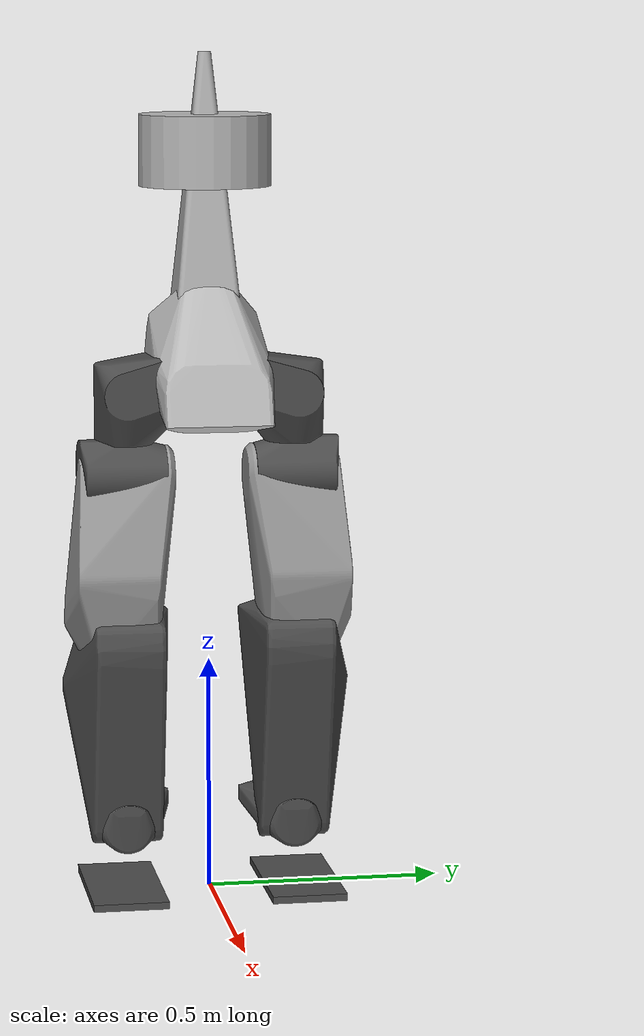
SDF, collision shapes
<sdf version='1.6'>
  <model name='bigman'>
    <link name='base_link'>
      <pose frame=''>0 0 0 0 -0 0</pose>
      <inertial>
        <pose frame=''>-0.031284 -0.000223 0.344145 0 -0 0</pose>
        <mass>36.5939</mass>
        <inertia>
          <ixx>2.2758</ixx>
          <ixy>0.000209989</ixy>
          <ixz>0.0457464</ixz>
          <iyy>2.27916</iyy>
          <iyz>-0.00242302</iyz>
          <izz>0.288924</izz>
        </inertia>
      </inertial>
      <collision name='base_link_fixed_joint_lump__Waist_collision'>
        <pose frame=''>0 0 0 0 -0 0</pose>
        <geometry>
          <mesh>
            <scale>0.001 0.001 0.001</scale>
            <uri>model://bigman_urdf/meshes/simple/Waist.STL</uri>
          </mesh>
        </geometry>
      </collision>
      <collision name='base_link_fixed_joint_lump__PelvisWeightBench_collision_1'>
        <pose frame=''>-0.035 0 0.075 0 -0 1.5708</pose>
        <geometry>
          <mesh>
            <scale>0.001 0.001 0.001</scale>
            <uri>model://bigman_urdf/meshes/simple/PelvisWeightBench.STL</uri>
          </mesh>
        </geometry>
      </collision>
      <collision name='base_link_fixed_joint_lump__ExtraWeight_collision_2'>
        <pose frame=''>-0.035 0 0.465 0 -0 1.5708</pose>
        <geometry>
          <cylinder>
            <length>0.15</length>
            <radius>0.14</radius>
          </cylinder>
        </geometry>
      </collision>
      <visual name='base_link_fixed_joint_lump__Waist_visual'>
        <pose frame=''>0 0 0 0 -0 0</pose>
        <geometry>
          <mesh>
            <scale>0.001 0.001 0.001</scale>
            <uri>model://bigman_urdf/meshes/Waist.STL</uri>
          </mesh>
        </geometry>
      </visual>
      <visual name='base_link_fixed_joint_lump__PelvisWeightBench_visual_1'>
        <pose frame=''>-0.035 0 0.075 0 -0 1.5708</pose>
        <geometry>
          <mesh>
            <scale>0.001 0.001 0.001</scale>
            <uri>model://bigman_urdf/meshes/PelvisWeightBench.STL</uri>
          </mesh>
        </geometry>
      </visual>
      <visual name='base_link_fixed_joint_lump__ExtraWeight_visual_2'>
        <pose frame=''>-0.035 0 0.465 0 -0 1.5708</pose>
        <geometry>
          <cylinder>
            <length>0.15</length>
            <radius>0.14</radius>
          </cylinder>
        </geometry>
      </visual>
      <visual name='base_link_fixed_joint_lump__imu_link_visual_3'>
        <pose frame=''>0.0535 0 0.0601 0 -0 0</pose>
        <geometry>
          <box>
            <size>0.01 0.01 0.01</size>
          </box>
        </geometry>
        <material>
          <script>
            <uri>__default__</uri>
            <name>__default__</name>
          </script>
        </material>
      </visual>
      <visual name='base_link_fixed_joint_lump__imu_link2_visual_4'>
        <pose frame=''>0.0135 0 0.0601 0 -0 0</pose>
        <geometry>
          <box>
            <size>0.01 0.01 0.01</size>
          </box>
        </geometry>
        <material>
          <script>
            <uri>__default__</uri>
            <name>__default__</name>
          </script>
        </material>
      </visual>
      <velocity_decay/>
      <velocity_decay/>
      <sensor name='imu_link' type='imu'>
        <always_on>1</always_on>
        <update_rate>1000</update_rate>
        <visualize>1</visualize>
        <topic>__default_topic__</topic>
        <imu>
          <angular_velocity/>
          <linear_acceleration/>
        </imu>
        <pose frame=''>0.0535 0 0.0601 0 -0 0</pose>
      </sensor>
      <gravity>1</gravity>
      <velocity_decay/>
      <sensor name='imu_link2' type='imu'>
        <always_on>1</always_on>
        <update_rate>1000</update_rate>
        <visualize>1</visualize>
        <topic>__default_topic__</topic>
        <imu>
          <angular_velocity/>
          <linear_acceleration/>
        </imu>
        <pose frame=''>0.0135 0 0.0601 0 -0 0</pose>
      </sensor>
    </link>
    <link name='LHipMot'>
      <pose frame=''>0.1059 0.06 0 0 -0 0</pose>
      <inertial>
        <pose frame=''>-0.103482 0.109198 -0.064924 0 -0 0</pose>
        <mass>3.79582</mass>
        <inertia>
          <ixx>0.015639</ixx>
          <ixy>-0.00185047</ixy>
          <ixz>0.00239078</ixz>
          <iyy>0.0235197</iyy>
          <iyz>0.00233032</iyz>
          <izz>0.0209536</izz>
        </inertia>
      </inertial>
      <collision name='LHipMot_collision'>
        <pose frame=''>0 0 0 0 -0 0</pose>
        <geometry>
          <mesh>
            <scale>0.001 -0.001 0.001</scale>
            <uri>model://bigman_urdf/meshes/simple/HipRoll.STL</uri>
          </mesh>
        </geometry>
        <surface>
          <contact>
            <ode/>
          </contact>
          <friction>
            <ode/>
          </friction>
        </surface>
      </collision>
      <visual name='LHipMot_visual'>
        <pose frame=''>0 0 0 0 -0 0</pose>
        <geometry>
          <mesh>
            <scale>0.001 -0.001 0.001</scale>
            <uri>model://bigman_urdf/meshes/HipRoll.STL</uri>
          </mesh>
        </geometry>
        <material>
          <script>
            <name>Gazebo/DarkGrey</name>
            <uri>file://media/materials/scripts/gazebo.material</uri>
          </script>
        </material>
      </visual>
      <gravity>1</gravity>
      <velocity_decay/>
    </link>
    <joint name='LHipLat' type='revolute'>
      <child>LHipMot</child>
      <parent>base_link</parent>
      <axis>
        <xyz>1 0 0</xyz>
        <limit>
          <lower>-0.697778</lower>
          <upper>0.87222</upper>
          <effort>400</effort>
          <velocity>6.283</velocity>
        </limit>
        <dynamics>
          <damping>3</damping>
          <friction>0</friction>
          <spring_reference>0</spring_reference>
          <spring_stiffness>0</spring_stiffness>
        </dynamics>
        <use_parent_model_frame>1</use_parent_model_frame>
      </axis>
      <physics>
        <provide_feedback>1</provide_feedback>
        <ode>
          <provide_feedback>1</provide_feedback>
          <implicit_spring_damper>1</implicit_spring_damper>
          <cfm_damping>1</cfm_damping>
          <limit>
            <cfm>0</cfm>
            <erp>0.2</erp>
          </limit>
        </ode>
      </physics>
    </joint>
    <link name='LThighUpLeg'>
      <pose frame=''>0.017 0.181032 -0.217872 0 -0 0</pose>
      <inertial>
        <pose frame=''>-0.005293 0.022562 0.00567 0 -0 0</pose>
        <mass>3.24021</mass>
        <inertia>
          <ixx>0.0101021</ixx>
          <ixy>-0.000108585</ixy>
          <ixz>0.000252914</ixz>
          <iyy>0.0067147</iyy>
          <iyz>-8.34471e-05</iyz>
          <izz>0.0104851</izz>
        </inertia>
      </inertial>
      <collision name='LThighUpLeg_collision'>
        <pose frame=''>0 0 0 0 -0 0</pose>
        <geometry>
          <mesh>
            <scale>0.001 -0.001 0.001</scale>
            <uri>model://bigman_urdf/meshes/simple/HipYaw.STL</uri>
          </mesh>
        </geometry>
        <surface>
          <contact>
            <ode/>
          </contact>
          <friction>
            <ode/>
          </friction>
        </surface>
      </collision>
      <visual name='LThighUpLeg_visual'>
        <pose frame=''>0 0 0 0 -0 0</pose>
        <geometry>
          <mesh>
            <scale>0.001 -0.001 0.001</scale>
            <uri>model://bigman_urdf/meshes/HipYaw.STL</uri>
          </mesh>
        </geometry>
        <material>
          <script>
            <name>Gazebo/DarkGrey</name>
            <uri>file://media/materials/scripts/gazebo.material</uri>
          </script>
        </material>
      </visual>
      <gravity>1</gravity>
      <velocity_decay/>
    </link>
    <joint name='LHipYaw' type='revolute'>
      <child>LThighUpLeg</child>
      <parent>LHipMot</parent>
      <axis>
        <xyz>0 0 1</xyz>
        <limit>
          <lower>-0.872222</lower>
          <upper>1.57</upper>
          <effort>140</effort>
          <velocity>6.283</velocity>
        </limit>
        <dynamics>
          <damping>3</damping>
          <friction>0</friction>
          <spring_reference>0</spring_reference>
          <spring_stiffness>0</spring_stiffness>
        </dynamics>
        <use_parent_model_frame>1</use_parent_model_frame>
      </axis>
      <physics>
        <provide_feedback>1</provide_feedback>
        <ode>
          <provide_feedback>1</provide_feedback>
          <implicit_spring_damper>1</implicit_spring_damper>
          <cfm_damping>1</cfm_damping>
          <limit>
            <cfm>0</cfm>
            <erp>0.2</erp>
          </limit>
        </ode>
      </physics>
    </joint>
    <link name='LThighLowLeg'>
      <pose frame=''>0.017 0.181032 -0.217872 0 -0 0</pose>
      <inertial>
        <pose frame=''>0.037746 0.02854 -0.193101 0 -0 0</pose>
        <mass>5.09507</mass>
        <inertia>
          <ixx>0.0516079</ixx>
          <ixy>-0.00222535</ixy>
          <ixz>0.00245298</ixz>
          <iyy>0.0443492</iyy>
          <iyz>0.00410069</iyz>
          <izz>0.0233745</izz>
        </inertia>
      </inertial>
      <collision name='LThighLowLeg_collision'>
        <pose frame=''>0 0 0 0 -0 0</pose>
        <geometry>
          <mesh>
            <scale>0.001 -0.001 0.001</scale>
            <uri>model://bigman_urdf/meshes/simple/HipPitch.STL</uri>
          </mesh>
        </geometry>
        <surface>
          <contact>
            <ode/>
          </contact>
          <friction>
            <ode/>
          </friction>
        </surface>
      </collision>
      <visual name='LThighLowLeg_visual'>
        <pose frame=''>0 0 0 0 -0 0</pose>
        <geometry>
          <mesh>
            <scale>0.001 -0.001 0.001</scale>
            <uri>model://bigman_urdf/meshes/HipPitch.STL</uri>
          </mesh>
        </geometry>
        <material>
          <script>
            <name>Gazebo/Grey</name>
            <uri>file://media/materials/scripts/gazebo.material</uri>
          </script>
        </material>
      </visual>
      <gravity>1</gravity>
      <velocity_decay/>
    </link>
    <joint name='LHipSag' type='revolute'>
      <child>LThighLowLeg</child>
      <parent>LThighUpLeg</parent>
      <axis>
        <xyz>0 1 0</xyz>
        <limit>
          <lower>-2.09333</lower>
          <upper>1.04667</upper>
          <effort>400</effort>
          <velocity>6.283</velocity>
        </limit>
        <dynamics>
          <damping>3</damping>
          <friction>0</friction>
          <spring_reference>0</spring_reference>
          <spring_stiffness>0</spring_stiffness>
        </dynamics>
        <use_parent_model_frame>1</use_parent_model_frame>
      </axis>
      <physics>
        <provide_feedback>1</provide_feedback>
        <ode>
          <provide_feedback>1</provide_feedback>
          <implicit_spring_damper>1</implicit_spring_damper>
          <cfm_damping>1</cfm_damping>
          <limit>
            <cfm>0</cfm>
            <erp>0.2</erp>
          </limit>
        </ode>
      </physics>
    </joint>
    <link name='LLowLeg'>
      <pose frame=''>0.017 0.181032 -0.573872 0 -0 0</pose>
      <inertial>
        <pose frame=''>-0.005083 -0.003773 -0.072605 0 -0 0</pose>
        <mass>5.64953</mass>
        <inertia>
          <ixx>0.105355</ixx>
          <ixy>0.000581992</ixy>
          <ixz>0.00167436</ixz>
          <iyy>0.0978578</iyy>
          <iyz>0.00337702</iyz>
          <izz>0.0208541</izz>
        </inertia>
      </inertial>
      <collision name='LLowLeg_collision'>
        <pose frame=''>0 0 0 0 -0 0</pose>
        <geometry>
          <mesh>
            <scale>0.001 -0.001 0.001</scale>
            <uri>model://bigman_urdf/meshes/simple/KneePitchCalf.STL</uri>
          </mesh>
        </geometry>
        <surface>
          <contact>
            <ode>
              <kp>1e+06</kp>
              <kd>100</kd>
              <max_vel>1</max_vel>
              <min_depth>0</min_depth>
            </ode>
          </contact>
          <friction>
            <ode>
              <mu>0.3</mu>
              <mu2>0.3</mu2>
              <fdir1>1 0 0</fdir1>
            </ode>
          </friction>
        </surface>
      </collision>
      <visual name='LLowLeg_visual'>
        <pose frame=''>0 0 0 0 -0 0</pose>
        <geometry>
          <mesh>
            <scale>0.001 -0.001 0.001</scale>
            <uri>model://bigman_urdf/meshes/KneePitchCalf.STL</uri>
          </mesh>
        </geometry>
        <material>
          <script>
            <name>Gazebo/DarkGrey</name>
            <uri>file://media/materials/scripts/gazebo.material</uri>
          </script>
        </material>
      </visual>
      <velocity_decay/>
      <gravity>1</gravity>
      <velocity_decay/>
    </link>
    <joint name='LKneeSag' type='revolute'>
      <child>LLowLeg</child>
      <parent>LThighLowLeg</parent>
      <axis>
        <xyz>0 1 0</xyz>
        <limit>
          <lower>0</lower>
          <upper>2.44222</upper>
          <effort>400</effort>
          <velocity>6.283</velocity>
        </limit>
        <dynamics>
          <damping>3</damping>
          <friction>0</friction>
          <spring_reference>0</spring_reference>
          <spring_stiffness>0</spring_stiffness>
        </dynamics>
        <use_parent_model_frame>1</use_parent_model_frame>
      </axis>
      <physics>
        <provide_feedback>1</provide_feedback>
        <ode>
          <provide_feedback>1</provide_feedback>
          <implicit_spring_damper>1</implicit_spring_damper>
          <cfm_damping>1</cfm_damping>
          <limit>
            <cfm>0</cfm>
            <erp>0.2</erp>
          </limit>
        </ode>
      </physics>
    </joint>
    <link name='LFootmot'>
      <pose frame=''>0.017 0.181032 -0.973872 0 -0 0</pose>
      <inertial>
        <pose frame=''>-0.022024 -0.002568 0.000946 0 -0 0</pose>
        <mass>3.28442</mass>
        <inertia>
          <ixx>0.00755507</ixx>
          <ixy>-0.000674883</ixy>
          <ixz>5.83329e-05</ixz>
          <iyy>0.0112412</iyy>
          <iyz>0.000145521</iyz>
          <izz>0.0133919</izz>
        </inertia>
      </inertial>
      <collision name='LFootmot_collision'>
        <pose frame=''>0 0 0 0 -0 0</pose>
        <geometry>
          <mesh>
            <scale>0.001 -0.001 0.001</scale>
            <uri>model://bigman_urdf/meshes/simple/AnklePitch.STL</uri>
          </mesh>
        </geometry>
        <surface>
          <contact>
            <ode/>
          </contact>
          <friction>
            <ode/>
          </friction>
        </surface>
      </collision>
      <visual name='LFootmot_visual'>
        <pose frame=''>0 0 0 0 -0 0</pose>
        <geometry>
          <mesh>
            <scale>0.001 -0.001 0.001</scale>
            <uri>model://bigman_urdf/meshes/AnklePitch.STL</uri>
          </mesh>
        </geometry>
        <material>
          <script>
            <name>Gazebo/DarkGrey</name>
            <uri>file://media/materials/scripts/gazebo.material</uri>
          </script>
        </material>
      </visual>
      <gravity>1</gravity>
      <velocity_decay/>
    </link>
    <joint name='LAnkSag' type='revolute'>
      <child>LFootmot</child>
      <parent>LLowLeg</parent>
      <axis>
        <xyz>0 1 0</xyz>
        <limit>
          <lower>-1.39556</lower>
          <upper>0.697778</upper>
          <effort>330</effort>
          <velocity>6.283</velocity>
        </limit>
        <dynamics>
          <damping>3</damping>
          <friction>0</friction>
          <spring_reference>0</spring_reference>
          <spring_stiffness>0</spring_stiffness>
        </dynamics>
        <use_parent_model_frame>1</use_parent_model_frame>
      </axis>
      <physics>
        <provide_feedback>1</provide_feedback>
        <ode>
          <provide_feedback>1</provide_feedback>
          <implicit_spring_damper>1</implicit_spring_damper>
          <cfm_damping>1</cfm_damping>
          <limit>
            <cfm>0</cfm>
            <erp>0.2</erp>
          </limit>
        </ode>
      </physics>
    </joint>
    <link name='LFoot'>
      <pose frame=''>0.017 0.181032 -0.973872 0 -0 0</pose>
      <inertial>
        <pose frame=''>-0.006536 0.004794 -0.101804 0 -0 0</pose>
        <mass>3.42638</mass>
        <inertia>
          <ixx>0.0103289</ixx>
          <ixy>0.00016407</ixy>
          <ixz>-0.00201294</ixz>
          <iyy>0.0285402</iyy>
          <iyz>-0.00046315</iyz>
          <izz>0.027995</izz>
        </inertia>
      </inertial>
      <collision name='LFoot_collision'>
        <pose frame=''>0.005 0.01 -0.1359 0 -0 0</pose>
        <geometry>
          <box>
            <size>0.32 0.16 0.015</size>
          </box>
        </geometry>
        <surface>
          <contact>
            <ode>
              <kp>1e+06</kp>
              <kd>100</kd>
              <max_vel>1</max_vel>
              <min_depth>0</min_depth>
            </ode>
          </contact>
          <friction>
            <ode>
              <mu>1</mu>
              <mu2>1</mu2>
              <fdir1>1 0 0</fdir1>
            </ode>
          </friction>
        </surface>
      </collision>
      <visual name='LFoot_visual'>
        <pose frame=''>0 0 0 0 -0 0</pose>
        <geometry>
          <mesh>
            <scale>0.001 -0.001 0.001</scale>
            <uri>model://bigman_urdf/meshes/NewFoot.STL</uri>
          </mesh>
        </geometry>
        <material>
          <script>
            <name>Gazebo/DarkGrey</name>
            <uri>file://media/materials/scripts/gazebo.material</uri>
          </script>
        </material>
      </visual>
      <velocity_decay/>
      <gravity>1</gravity>
      <velocity_decay/>
    </link>
    <joint name='LAnkLat' type='revolute'>
      <child>LFoot</child>
      <parent>LFootmot</parent>
      <axis>
        <xyz>1 0 0</xyz>
        <limit>
          <lower>-0.785</lower>
          <upper>0.785</upper>
          <effort>210</effort>
          <velocity>6.283</velocity>
        </limit>
        <dynamics>
          <damping>3</damping>
          <friction>0</friction>
          <spring_reference>0</spring_reference>
          <spring_stiffness>0</spring_stiffness>
        </dynamics>
        <use_parent_model_frame>1</use_parent_model_frame>
      </axis>
      <physics>
        <ode>
          <limit>
            <cfm>0</cfm>
            <erp>0.2</erp>
          </limit>
          <provide_feedback>1</provide_feedback>
          <implicit_spring_damper>1</implicit_spring_damper>
          <cfm_damping>1</cfm_damping>
        </ode>
        <provide_feedback>1</provide_feedback>
      </physics>
      <sensor name='l_leg_ft' type='force_torque'>
        <force_torque>
          <frame>sensor</frame>
          <measure_direction>child_to_parent</measure_direction>
        </force_torque>
        <always_on>1</always_on>
        <visualize>1</visualize>
        <update_rate>1000</update_rate>
        <pose frame=''>0.005 0 -0.107 0 -0 0</pose>
      </sensor>
    </joint>
    <link name='RHipMot'>
      <pose frame=''>0.1059 -0.06 0 0 -0 0</pose>
      <inertial>
        <pose frame=''>-0.103482 -0.109198 -0.064924 0 -0 0</pose>
        <mass>3.79582</mass>
        <inertia>
          <ixx>0.015639</ixx>
          <ixy>0.00185047</ixy>
          <ixz>0.00239078</ixz>
          <iyy>0.0235197</iyy>
          <iyz>-0.00233032</iyz>
          <izz>0.0209536</izz>
        </inertia>
      </inertial>
      <collision name='RHipMot_collision'>
        <pose frame=''>0 0 0 0 -0 0</pose>
        <geometry>
          <mesh>
            <scale>0.001 0.001 0.001</scale>
            <uri>model://bigman_urdf/meshes/simple/HipRoll.STL</uri>
          </mesh>
        </geometry>
        <surface>
          <contact>
            <ode/>
          </contact>
          <friction>
            <ode/>
          </friction>
        </surface>
      </collision>
      <visual name='RHipMot_visual'>
        <pose frame=''>0 0 0 0 -0 0</pose>
        <geometry>
          <mesh>
            <scale>0.001 0.001 0.001</scale>
            <uri>model://bigman_urdf/meshes/HipRoll.STL</uri>
          </mesh>
        </geometry>
        <material>
          <script>
            <name>Gazebo/DarkGrey</name>
            <uri>file://media/materials/scripts/gazebo.material</uri>
          </script>
        </material>
      </visual>
      <gravity>1</gravity>
      <velocity_decay/>
    </link>
    <joint name='RHipLat' type='revolute'>
      <child>RHipMot</child>
      <parent>base_link</parent>
      <axis>
        <xyz>1 0 0</xyz>
        <limit>
          <lower>-0.87222</lower>
          <upper>0.697778</upper>
          <effort>400</effort>
          <velocity>6.283</velocity>
        </limit>
        <dynamics>
          <damping>3</damping>
          <friction>0</friction>
          <spring_reference>0</spring_reference>
          <spring_stiffness>0</spring_stiffness>
        </dynamics>
        <use_parent_model_frame>1</use_parent_model_frame>
      </axis>
      <physics>
        <provide_feedback>1</provide_feedback>
        <ode>
          <provide_feedback>1</provide_feedback>
          <implicit_spring_damper>1</implicit_spring_damper>
          <cfm_damping>1</cfm_damping>
          <limit>
            <cfm>0</cfm>
            <erp>0.2</erp>
          </limit>
        </ode>
      </physics>
    </joint>
    <link name='RThighUpLeg'>
      <pose frame=''>0.017 -0.181032 -0.217872 0 -0 0</pose>
      <inertial>
        <pose frame=''>-0.005293 -0.022562 0.00567 0 -0 0</pose>
        <mass>3.24021</mass>
        <inertia>
          <ixx>0.0101021</ixx>
          <ixy>0.000108585</ixy>
          <ixz>0.000252914</ixz>
          <iyy>0.0067147</iyy>
          <iyz>8.34471e-05</iyz>
          <izz>0.0104851</izz>
        </inertia>
      </inertial>
      <collision name='RThighUpLeg_collision'>
        <pose frame=''>0 0 0 0 -0 0</pose>
        <geometry>
          <mesh>
            <scale>0.001 0.001 0.001</scale>
            <uri>model://bigman_urdf/meshes/simple/HipYaw.STL</uri>
          </mesh>
        </geometry>
        <surface>
          <contact>
            <ode/>
          </contact>
          <friction>
            <ode/>
          </friction>
        </surface>
      </collision>
      <visual name='RThighUpLeg_visual'>
        <pose frame=''>0 0 0 0 -0 0</pose>
        <geometry>
          <mesh>
            <scale>0.001 0.001 0.001</scale>
            <uri>model://bigman_urdf/meshes/HipYaw.STL</uri>
          </mesh>
        </geometry>
        <material>
          <script>
            <name>Gazebo/DarkGrey</name>
            <uri>file://media/materials/scripts/gazebo.material</uri>
          </script>
        </material>
      </visual>
      <gravity>1</gravity>
      <velocity_decay/>
    </link>
    <joint name='RHipYaw' type='revolute'>
      <child>RThighUpLeg</child>
      <parent>RHipMot</parent>
      <axis>
        <xyz>0 0 1</xyz>
        <limit>
          <lower>-1.57</lower>
          <upper>0.872222</upper>
          <effort>140</effort>
          <velocity>6.283</velocity>
        </limit>
        <dynamics>
          <damping>3</damping>
          <friction>0</friction>
          <spring_reference>0</spring_reference>
          <spring_stiffness>0</spring_stiffness>
        </dynamics>
        <use_parent_model_frame>1</use_parent_model_frame>
      </axis>
      <physics>
        <provide_feedback>1</provide_feedback>
        <ode>
          <provide_feedback>1</provide_feedback>
          <implicit_spring_damper>1</implicit_spring_damper>
          <cfm_damping>1</cfm_damping>
          <limit>
            <cfm>0</cfm>
            <erp>0.2</erp>
          </limit>
        </ode>
      </physics>
    </joint>
    <link name='RThighLowLeg'>
      <pose frame=''>0.017 -0.181032 -0.217872 0 -0 0</pose>
      <inertial>
        <pose frame=''>0.037746 -0.02854 -0.193101 0 -0 0</pose>
        <mass>5.09507</mass>
        <inertia>
          <ixx>0.0516079</ixx>
          <ixy>0.00222535</ixy>
          <ixz>0.00245298</ixz>
          <iyy>0.0443492</iyy>
          <iyz>-0.00410069</iyz>
          <izz>0.0233745</izz>
        </inertia>
      </inertial>
      <collision name='RThighLowLeg_collision'>
        <pose frame=''>0 0 0 0 -0 0</pose>
        <geometry>
          <mesh>
            <scale>0.001 0.001 0.001</scale>
            <uri>model://bigman_urdf/meshes/simple/HipPitch.STL</uri>
          </mesh>
        </geometry>
        <surface>
          <contact>
            <ode/>
          </contact>
          <friction>
            <ode/>
          </friction>
        </surface>
      </collision>
      <visual name='RThighLowLeg_visual'>
        <pose frame=''>0 0 0 0 -0 0</pose>
        <geometry>
          <mesh>
            <scale>0.001 0.001 0.001</scale>
            <uri>model://bigman_urdf/meshes/HipPitch.STL</uri>
          </mesh>
        </geometry>
        <material>
          <script>
            <name>Gazebo/Grey</name>
            <uri>file://media/materials/scripts/gazebo.material</uri>
          </script>
        </material>
      </visual>
      <gravity>1</gravity>
      <velocity_decay/>
    </link>
    <joint name='RHipSag' type='revolute'>
      <child>RThighLowLeg</child>
      <parent>RThighUpLeg</parent>
      <axis>
        <xyz>0 1 0</xyz>
        <limit>
          <lower>-2.09333</lower>
          <upper>1.04667</upper>
          <effort>400</effort>
          <velocity>6.283</velocity>
        </limit>
        <dynamics>
          <damping>3</damping>
          <friction>0</friction>
          <spring_reference>0</spring_reference>
          <spring_stiffness>0</spring_stiffness>
        </dynamics>
        <use_parent_model_frame>1</use_parent_model_frame>
      </axis>
      <physics>
        <provide_feedback>1</provide_feedback>
        <ode>
          <provide_feedback>1</provide_feedback>
          <implicit_spring_damper>1</implicit_spring_damper>
          <cfm_damping>1</cfm_damping>
          <limit>
            <cfm>0</cfm>
            <erp>0.2</erp>
          </limit>
        </ode>
      </physics>
    </joint>
    <link name='RLowLeg'>
      <pose frame=''>0.017 -0.181032 -0.573872 0 -0 0</pose>
      <inertial>
        <pose frame=''>-0.005083 0.003773 -0.072605 0 -0 0</pose>
        <mass>5.64953</mass>
        <inertia>
          <ixx>0.105355</ixx>
          <ixy>-0.000581992</ixy>
          <ixz>0.00167436</ixz>
          <iyy>0.0978578</iyy>
          <iyz>-0.00337702</iyz>
          <izz>0.0208541</izz>
        </inertia>
      </inertial>
      <collision name='RLowLeg_collision'>
        <pose frame=''>0 0 0 0 -0 0</pose>
        <geometry>
          <mesh>
            <scale>0.001 0.001 0.001</scale>
            <uri>model://bigman_urdf/meshes/simple/KneePitchCalf.STL</uri>
          </mesh>
        </geometry>
        <surface>
          <contact>
            <ode>
              <kp>1e+06</kp>
              <kd>100</kd>
              <max_vel>1</max_vel>
              <min_depth>0</min_depth>
            </ode>
          </contact>
          <friction>
            <ode>
              <mu>0.3</mu>
              <mu2>0.3</mu2>
              <fdir1>1 0 0</fdir1>
            </ode>
          </friction>
        </surface>
      </collision>
      <visual name='RLowLeg_visual'>
        <pose frame=''>0 0 0 0 -0 0</pose>
        <geometry>
          <mesh>
            <scale>0.001 0.001 0.001</scale>
            <uri>model://bigman_urdf/meshes/KneePitchCalf.STL</uri>
          </mesh>
        </geometry>
        <material>
          <script>
            <name>Gazebo/DarkGrey</name>
            <uri>file://media/materials/scripts/gazebo.material</uri>
          </script>
        </material>
      </visual>
      <velocity_decay/>
      <gravity>1</gravity>
      <velocity_decay/>
    </link>
    <joint name='RKneeSag' type='revolute'>
      <child>RLowLeg</child>
      <parent>RThighLowLeg</parent>
      <axis>
        <xyz>0 1 0</xyz>
        <limit>
          <lower>0</lower>
          <upper>2.44222</upper>
          <effort>400</effort>
          <velocity>6.283</velocity>
        </limit>
        <dynamics>
          <damping>3</damping>
          <friction>0</friction>
          <spring_reference>0</spring_reference>
          <spring_stiffness>0</spring_stiffness>
        </dynamics>
        <use_parent_model_frame>1</use_parent_model_frame>
      </axis>
      <physics>
        <provide_feedback>1</provide_feedback>
        <ode>
          <provide_feedback>1</provide_feedback>
          <implicit_spring_damper>1</implicit_spring_damper>
          <cfm_damping>1</cfm_damping>
          <limit>
            <cfm>0</cfm>
            <erp>0.2</erp>
          </limit>
        </ode>
      </physics>
    </joint>
    <link name='RFootmot'>
      <pose frame=''>0.017 -0.181032 -0.973872 0 -0 0</pose>
      <inertial>
        <pose frame=''>-0.022024 0.002568 0.000946 0 -0 0</pose>
        <mass>3.28442</mass>
        <inertia>
          <ixx>0.00755507</ixx>
          <ixy>0.000674883</ixy>
          <ixz>5.83329e-05</ixz>
          <iyy>0.0112412</iyy>
          <iyz>-0.000145521</iyz>
          <izz>0.0133919</izz>
        </inertia>
      </inertial>
      <collision name='RFootmot_collision'>
        <pose frame=''>0 0 0 0 -0 0</pose>
        <geometry>
          <mesh>
            <scale>0.001 0.001 0.001</scale>
            <uri>model://bigman_urdf/meshes/simple/AnklePitch.STL</uri>
          </mesh>
        </geometry>
        <surface>
          <contact>
            <ode/>
          </contact>
          <friction>
            <ode/>
          </friction>
        </surface>
      </collision>
      <visual name='RFootmot_visual'>
        <pose frame=''>0 0 0 0 -0 0</pose>
        <geometry>
          <mesh>
            <scale>0.001 0.001 0.001</scale>
            <uri>model://bigman_urdf/meshes/AnklePitch.STL</uri>
          </mesh>
        </geometry>
        <material>
          <script>
            <name>Gazebo/DarkGrey</name>
            <uri>file://media/materials/scripts/gazebo.material</uri>
          </script>
        </material>
      </visual>
      <gravity>1</gravity>
      <velocity_decay/>
    </link>
    <joint name='RAnkSag' type='revolute'>
      <child>RFootmot</child>
      <parent>RLowLeg</parent>
      <axis>
        <xyz>0 1 0</xyz>
        <limit>
          <lower>-1.39556</lower>
          <upper>0.697778</upper>
          <effort>330</effort>
          <velocity>6.283</velocity>
        </limit>
        <dynamics>
          <damping>3</damping>
          <friction>0</friction>
          <spring_reference>0</spring_reference>
          <spring_stiffness>0</spring_stiffness>
        </dynamics>
        <use_parent_model_frame>1</use_parent_model_frame>
      </axis>
      <physics>
        <provide_feedback>1</provide_feedback>
        <ode>
          <provide_feedback>1</provide_feedback>
          <implicit_spring_damper>1</implicit_spring_damper>
          <cfm_damping>1</cfm_damping>
          <limit>
            <cfm>0</cfm>
            <erp>0.2</erp>
          </limit>
        </ode>
      </physics>
    </joint>
    <link name='RFoot'>
      <pose frame=''>0.017 -0.181032 -0.973872 0 -0 0</pose>
      <inertial>
        <pose frame=''>-0.006536 -0.004794 -0.101804 0 -0 0</pose>
        <mass>3.42638</mass>
        <inertia>
          <ixx>0.0103289</ixx>
          <ixy>-0.00016407</ixy>
          <ixz>-0.00201294</ixz>
          <iyy>0.0285402</iyy>
          <iyz>0.00046315</iyz>
          <izz>0.027995</izz>
        </inertia>
      </inertial>
      <collision name='RFoot_collision'>
        <pose frame=''>0.005 -0.01 -0.1359 0 -0 0</pose>
        <geometry>
          <box>
            <size>0.32 0.16 0.015</size>
          </box>
        </geometry>
        <surface>
          <contact>
            <ode>
              <kp>1e+06</kp>
              <kd>100</kd>
              <max_vel>1</max_vel>
              <min_depth>0</min_depth>
            </ode>
          </contact>
          <friction>
            <ode>
              <mu>1</mu>
              <mu2>1</mu2>
              <fdir1>1 0 0</fdir1>
            </ode>
          </friction>
        </surface>
      </collision>
      <visual name='RFoot_visual'>
        <pose frame=''>0 0 0 0 -0 0</pose>
        <geometry>
          <mesh>
            <scale>0.001 0.001 0.001</scale>
            <uri>model://bigman_urdf/meshes/NewFoot.STL</uri>
          </mesh>
        </geometry>
        <material>
          <script>
            <name>Gazebo/DarkGrey</name>
            <uri>file://media/materials/scripts/gazebo.material</uri>
          </script>
        </material>
      </visual>
      <velocity_decay/>
      <gravity>1</gravity>
      <velocity_decay/>
    </link>
    <joint name='RAnkLat' type='revolute'>
      <child>RFoot</child>
      <parent>RFootmot</parent>
      <axis>
        <xyz>1 0 0</xyz>
        <limit>
          <lower>-0.785</lower>
          <upper>0.785</upper>
          <effort>210</effort>
          <velocity>6.283</velocity>
        </limit>
        <dynamics>
          <damping>3</damping>
          <friction>0</friction>
          <spring_reference>0</spring_reference>
          <spring_stiffness>0</spring_stiffness>
        </dynamics>
        <use_parent_model_frame>1</use_parent_model_frame>
      </axis>
      <physics>
        <ode>
          <limit>
            <cfm>0</cfm>
            <erp>0.2</erp>
          </limit>
          <provide_feedback>1</provide_feedback>
          <implicit_spring_damper>1</implicit_spring_damper>
          <cfm_damping>1</cfm_damping>
        </ode>
        <provide_feedback>1</provide_feedback>
      </physics>
      <sensor name='r_leg_ft' type='force_torque'>
        <force_torque>
          <frame>sensor</frame>
          <measure_direction>child_to_parent</measure_direction>
        </force_torque>
        <always_on>1</always_on>
        <visualize>1</visualize>
        <update_rate>1000</update_rate>
        <pose frame=''>0.005 0 -0.107 0 -0 0</pose>
      </sensor>
    </joint>
    <static>0</static>
    <plugin name='xbot_plugin_handler' filename='libGazeboXBotPlugin.so'>
      <path_to_config_file>configs/ADVR_shared/bigman/configs/config_walkman_floating_base.yaml</path_to_config_file>
    </plugin>
    <pose frame=''>0 0 1.12 0 -0 0</pose>
  </model>
</sdf>
